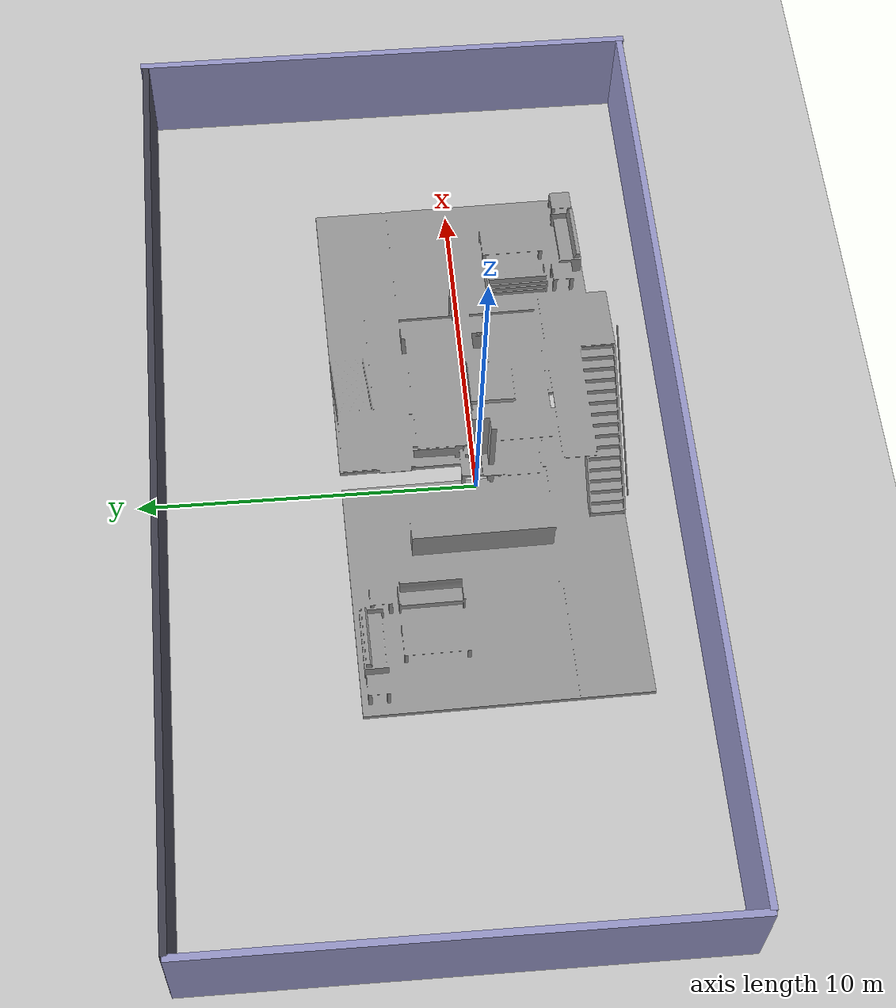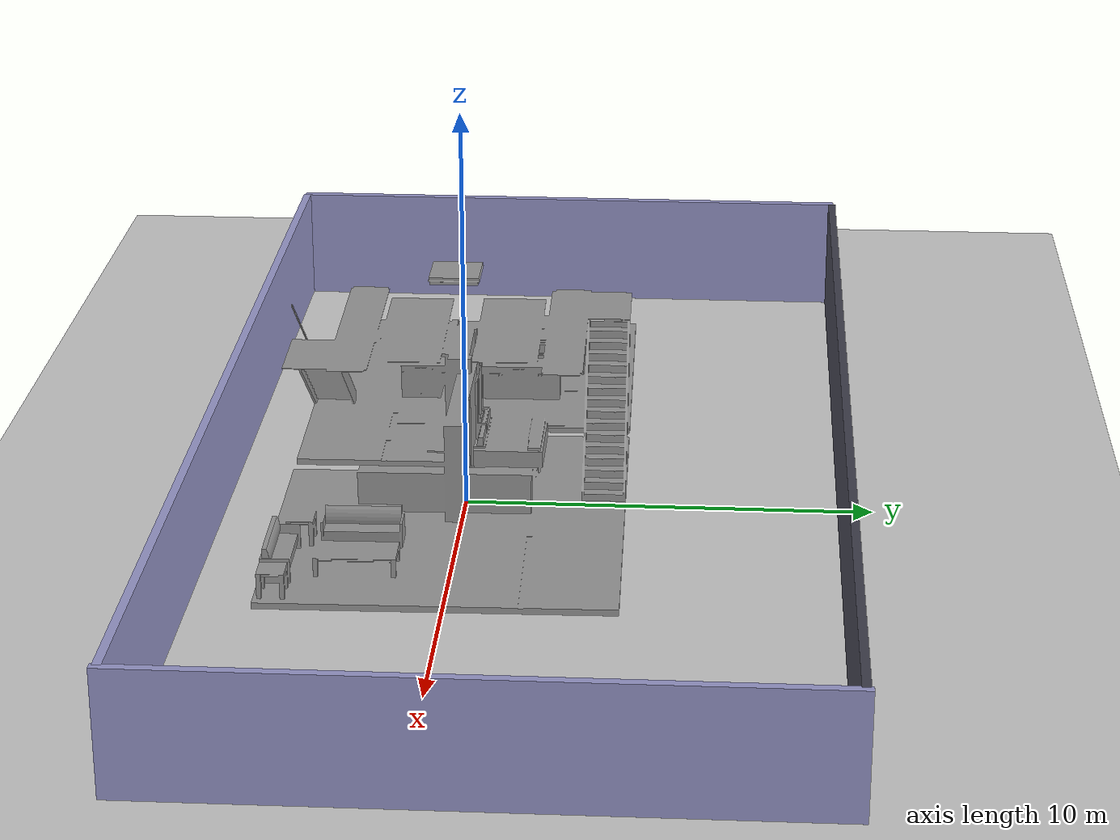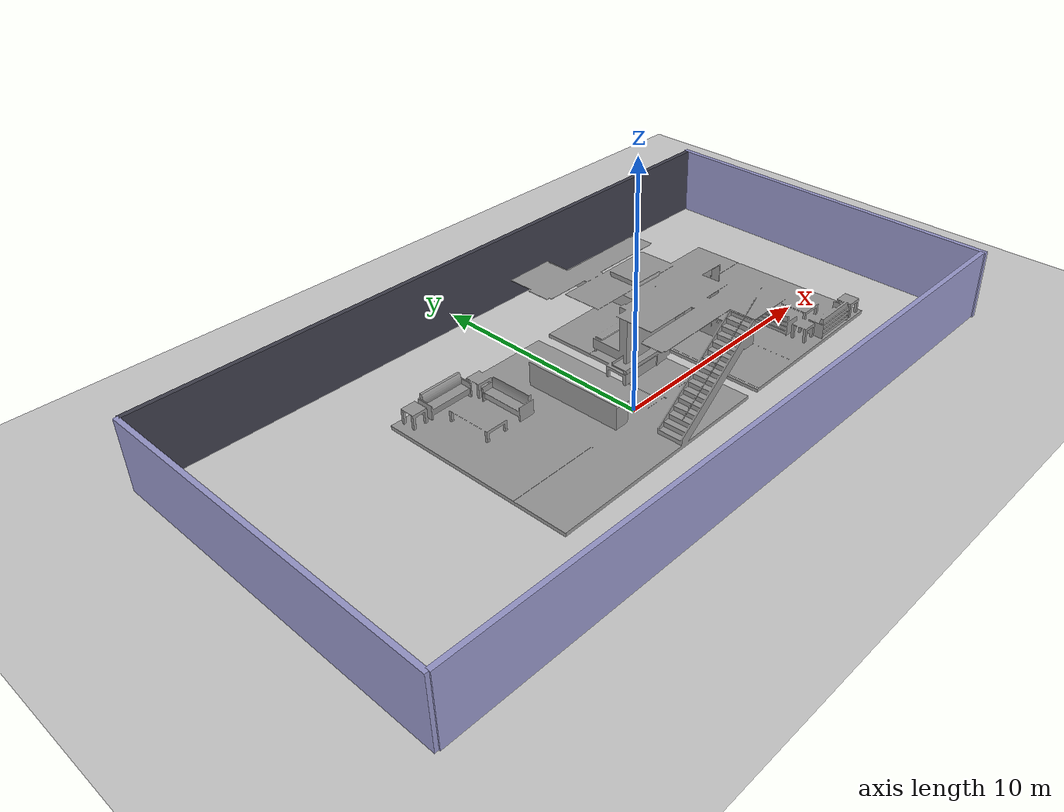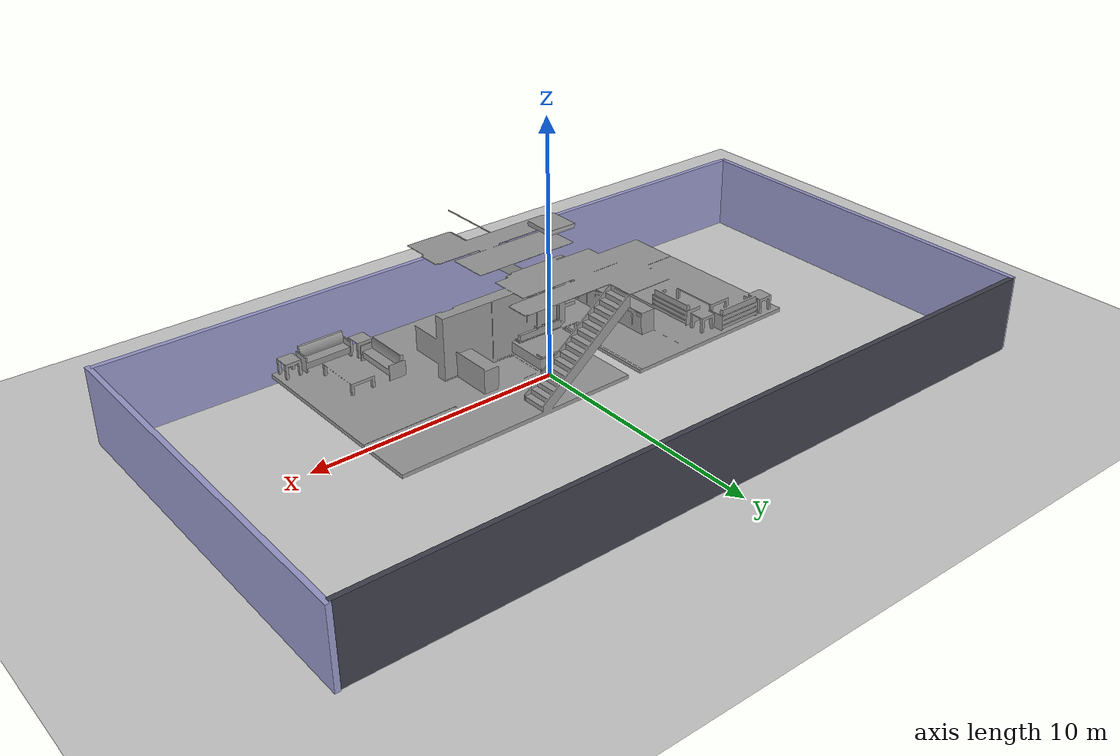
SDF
<?xml version='1.0' encoding='utf-8'?>
<sdf version='1.7'>
  <world name='default'>
    <!-- Physics -->
    <plugin filename="libignition-gazebo-physics-system.so" name="ignition::gazebo::systems::Physics">
    </plugin>

    <!-- Forwards simulation state to the GUI -->
    <plugin filename="libignition-gazebo-scene-broadcaster-system.so" name="ignition::gazebo::systems::SceneBroadcaster">
    </plugin>

    <!-- Processes user commands, like translate and create -->
    <plugin filename="libignition-gazebo-user-commands-system.so" name="ignition::gazebo::systems::UserCommands">
    </plugin>

    <!-- Generates rendering sensor data -->
    <plugin filename="libignition-gazebo-sensors-system.so" name="ignition::gazebo::systems::Sensors">
      <render_engine>ogre</render_engine>
    </plugin>

    <plugin filename="libignition-gazebo-imu-system.so" name="ignition::gazebo::systems::Imu">
    </plugin>

    <light type='directional' name='direct_light'>
      <cast_shadows>true</cast_shadows>
      <pose>7.4 3.6 10 0 0 0</pose>
      <diffuse>1.0 1.0 1.0 1</diffuse>
      <specular>0.5 0.5 0.5 1</specular>
      <attenuation>
        <range>1000</range>
        <constant>0.9</constant>
        <linear>0.01</linear>
        <quadratic>0.001</quadratic>
      </attenuation>
      <direction>0 0 -1</direction>
    </light>

    <!-- Your custom rmuc_2026 model -->
    <model name='rmuc_2027'>
      <include>
        <uri>model://rmuc_2027</uri>
      </include>
      <pose>0.0 0.0 1.52 0 0 0</pose>
      <static>true</static>
    </model>

    <!-- Ground plane -->
    <model name='ground_plane'>
      <static>true</static>
      <link name='link'>
        <collision name='collision'>
          <geometry>
            <plane>
              <normal>0 0 1</normal>
            </plane>
          </geometry>
        </collision>
        <visual name='visual'>
          <geometry>
            <plane>
              <normal>0 0 1</normal>
              <size>100 100</size>
            </plane>
          </geometry>
          <material>
            <ambient>0.8 0.8 0.8 1</ambient>
            <diffuse>0.8 0.8 0.8 1</diffuse>
            <specular>0.8 0.8 0.8 1</specular>
          </material>
        </visual>
      </link>
    </model>

    <!-- North Wall -->
    <model name='wall_north'>
      <static>true</static>
      <link name='link'>
        <collision name='collision'>
          <geometry>
            <box>
              <size>29.0 0.2 3.0</size>
            </box>
          </geometry>
        </collision>
        <visual name='visual'>
          <geometry>
            <box>
              <size>29.0 0.2 3.0</size>
            </box>
          </geometry>
          <material>
            <ambient>0.2 0.2 0.25 1</ambient>
            <diffuse>0.25 0.25 0.3 1</diffuse>
            <specular>0.7 0.7 0.8 1</specular>
            <shininess>64.0</shininess>
          </material>
        </visual>
      </link>
      <pose>0 9.25 1.5 0 0 0</pose>
    </model>

    <!-- South Wall -->
    <model name='wall_south'>
      <static>true</static>
      <link name='link'>
        <collision name='collision'>
          <geometry>
            <box>
              <size>29.0 0.2 3.0</size>
            </box>
          </geometry>
        </collision>
        <visual name='visual'>
          <geometry>
            <box>
              <size>29.0 0.2 3.0</size>
            </box>
          </geometry>
          <material>
            <ambient>0.6 0.6 0.8 1</ambient>
            <diffuse>0.6 0.6 0.8 1</diffuse>
            <specular>0.2 0.2 0.3 1</specular>
          </material>
        </visual>
      </link>
      <pose>0 -5.95 1.5 0 0 0</pose>
    </model>

    <!-- East Wall -->
    <model name='wall_east'>
      <static>true</static>
      <link name='link'>
        <collision name='collision'>
          <geometry>
            <box>
              <size>0.2 15.5 3.0</size>
            </box>
          </geometry>
        </collision>
        <visual name='visual'>
          <geometry>
            <box>
              <size>0.2 15.5 3.0</size>
            </box>
          </geometry>
          <material>
            <ambient>0.6 0.6 0.8 1</ambient>
            <diffuse>0.6 0.6 0.8 1</diffuse>
            <specular>0.2 0.2 0.3 1</specular>
          </material>
        </visual>
      </link>
      <pose>14.55 1.65 1.5 0 0 0</pose>
    </model>

    <!-- West Wall -->
    <model name='wall_west'>
      <static>true</static>
      <link name='link'>
        <collision name='collision'>
          <geometry>
            <box>
              <size>0.2 15.3 3.0</size>
            </box>
          </geometry>
        </collision>
        <visual name='visual'>
          <geometry>
            <box>
              <size>0.2 15.3 3.0</size>
            </box>
          </geometry>
          <material>
            <ambient>0.6 0.6 0.8 1</ambient>
            <diffuse>0.6 0.6 0.8 1</diffuse>
            <specular>0.2 0.2 0.3 1</specular>
          </material>
        </visual>
      </link>
      <pose>-14.55 1.65 1.5 0 0 0</pose>
    </model>

  </world>
</sdf>

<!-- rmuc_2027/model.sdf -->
<sdf version='1.6'>
  <model name='rmuc_2027'>
    <static>true</static>
    <link name='body'>
      <inertial>
        <mass>2.0</mass>
        <pose frame=''>0 0 0 0 0 0</pose>
        <inertia>
          <ixx>0.570</ixx>
          <ixy>0</ixy>
          <ixz>0</ixz>
          <iyy>0.474</iyy>
          <iyz>0</iyz>
          <izz>0.391</izz>
        </inertia>
      </inertial>

      <pose frame=''>0 0 0.2 0 0 0</pose>
      <self_collide>0</self_collide>
      <kinematic>0</kinematic>
      <gravity>1</gravity>

      <!-- Visual -->
      <visual name='visual'>
        <geometry>
          <mesh>
            <uri>model://rmuc_2027/meshes/rmuc_2027.stl</uri>
            <scale>1 1 1</scale>
          </mesh>
        </geometry>
        <meta>
          <layer>1</layer>
        </meta>
        <material>
          <lighting>1</lighting>
          <script>
            <uri>file://media/materials/scripts/gazebo.material</uri>
            <name>Gazebo/Grey</name>
          </script>
          <shader type='pixel'>
            <normal_map>__default__</normal_map>
          </shader>
          <ambient>0.3 0.3 0.3 1</ambient>
          <diffuse>0.7 0.7 0.7 1</diffuse>
          <specular>0.01 0.01 0.01 1</specular>
          <emissive>0 0 0 1</emissive>
        </material>
      </visual>

      <!-- Collision -->
      <collision name='collision'>
        <laser_retro>0</laser_retro>
        <max_contacts>10</max_contacts>
        <geometry>
          <mesh>
            <uri>model://rmuc_2027/meshes/rmuc_2027.stl</uri>
            <scale>0.1 0.1 0.1</scale>
          </mesh>
        </geometry>
        <surface>
          <friction>
            <ode>
              <mu>0.1</mu>
              <mu2>0.1</mu2>
              <fdir1>0 0 0</fdir1>
              <slip1>0</slip1>
              <slip2>0</slip2>
            </ode>
            <torsional>
              <coefficient>1</coefficient>
              <patch_radius>0</patch_radius>
              <surface_radius>0</surface_radius>
              <use_patch_radius>1</use_patch_radius>
              <ode>
                <slip>0</slip>
              </ode>
            </torsional>
          </friction>
        </surface>
      </collision>
    </link>
  </model>
</sdf>
